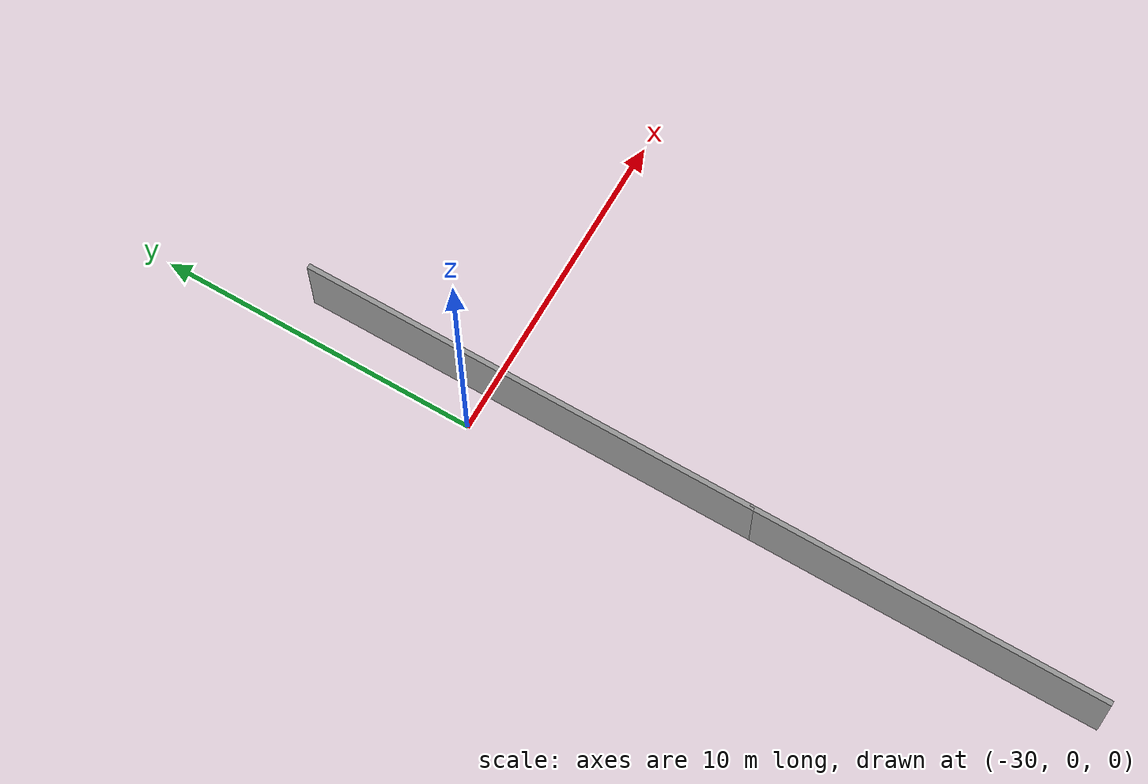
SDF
<?xml version='1.0'?>
<sdf version='1.6'>
  <model name='myhouse'>
    <pose frame=''>-28.8659 -6.77607 0 0 -0 0</pose>
    <link name='Wall_1'>
      <collision name='Wall_1_Collision'>
        <geometry>
          <box>
            <size>14.25 0.15 2.5</size>
          </box>
        </geometry>
        <pose frame=''>0 0 1.25 0 -0 0</pose>
      </collision>
      <visual name='Wall_1_Visual'>
        <pose frame=''>0 0 1.25 0 -0 0</pose>
        <geometry>
          <box>
            <size>14.25 0.15 2.5</size>
          </box>
        </geometry>
        <material>
          <script>
            <uri>file://media/materials/scripts/gazebo.material</uri>
            <name>Gazebo/Grey</name>
          </script>
          <ambient>1 1 1 1</ambient>
        </material>
        <meta>
          <layer>0</layer>
        </meta>
      </visual>
      <pose frame=''>0 5.425 0 0 0 -1.5708</pose>
    </link>
    <link name='Wall_2'>
      <collision name='Wall_2_Collision'>
        <geometry>
          <box>
            <size>11 0.15 2.5</size>
          </box>
        </geometry>
        <pose frame=''>0 0 1.25 0 -0 0</pose>
      </collision>
      <visual name='Wall_2_Visual'>
        <pose frame=''>0 0 1.25 0 -0 0</pose>
        <geometry>
          <box>
            <size>11 0.15 2.5</size>
          </box>
        </geometry>
        <material>
          <script>
            <uri>file://media/materials/scripts/gazebo.material</uri>
            <name>Gazebo/Grey</name>
          </script>
          <ambient>1 1 1 1</ambient>
        </material>
        <meta>
          <layer>0</layer>
        </meta>
      </visual>
      <pose frame=''>0 -7.05 0 0 0 -1.5708</pose>
    </link>
    <static>1</static>
  </model>
</sdf>
